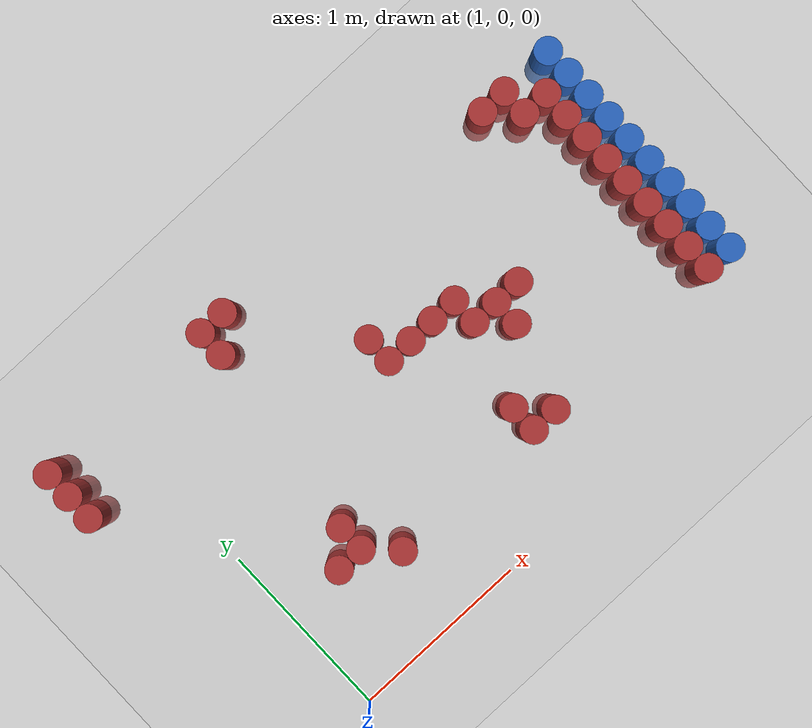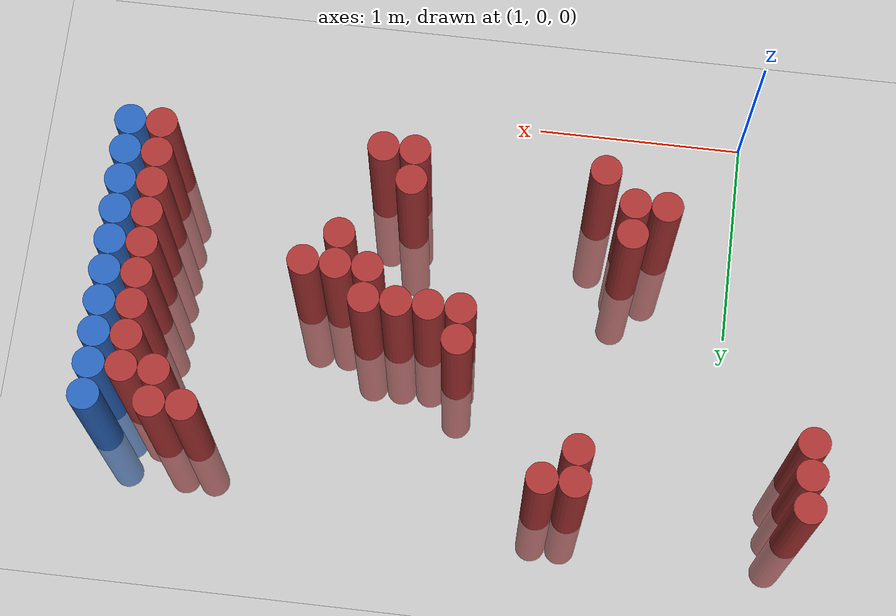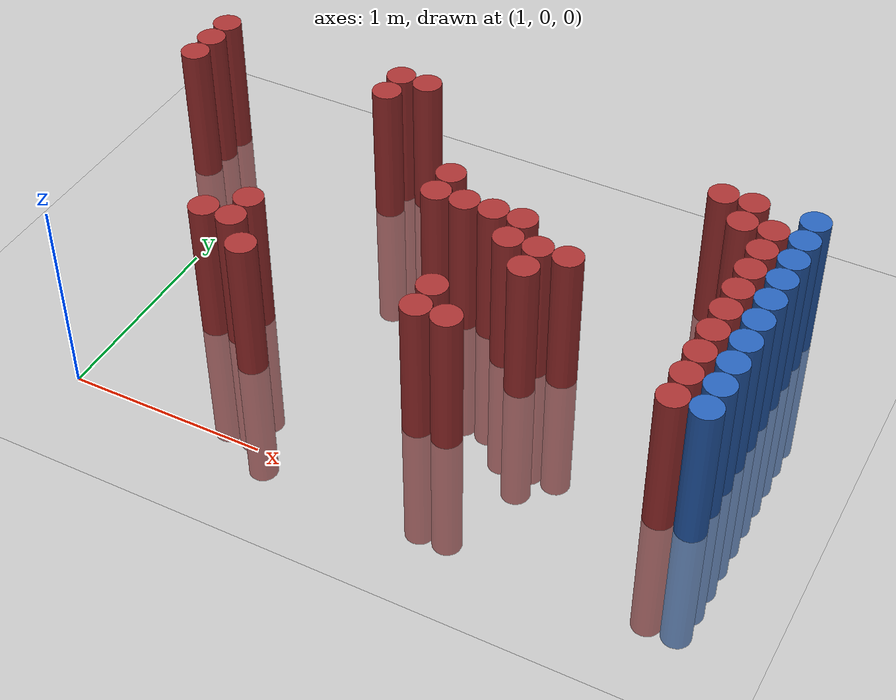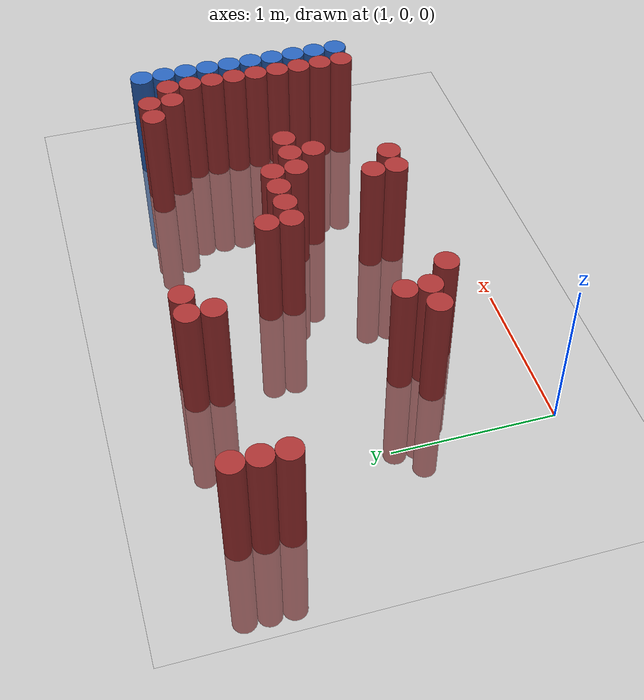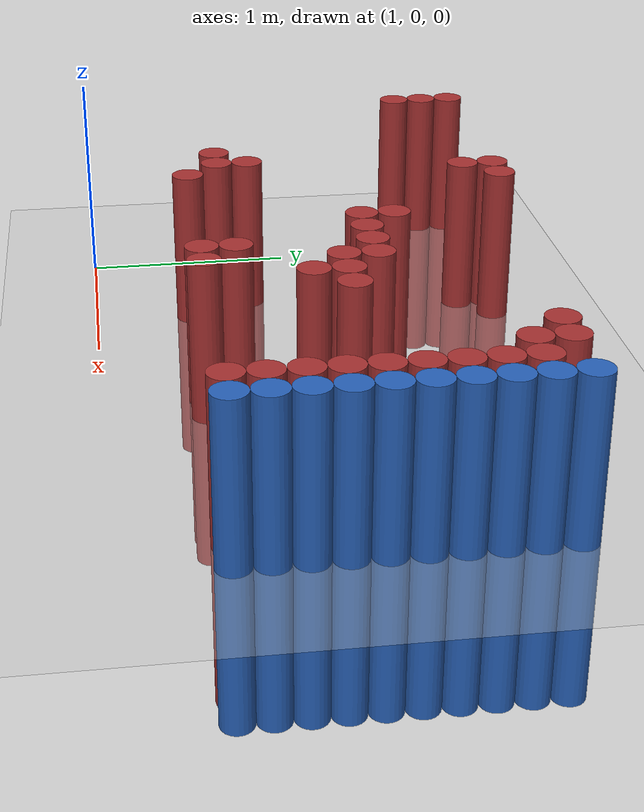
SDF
<sdf version="1.6">
 <world name="default">
  <model name="ground_plane">
   <static>1</static>
   <link name="link">
    <collision name="collision">
     <geometry><plane><normal>0 0 1</normal><size>100 100</size></plane></geometry>
     <surface><friction><ode><mu>100</mu><mu2>50</mu2></ode></friction></surface>
    </collision>
    <visual name="visual">
     <cast_shadows>0</cast_shadows>
     <geometry><plane><normal>0 0 1</normal><size>100 100</size></plane></geometry>
     <material>
      <script><uri>file://media/materials/scripts/gazebo.material</uri><name>Gazebo/Grey</name></script>
     </material>
    </visual>
   </link>
  </model>
  <model name="unit_cylinder_122">
   <static>1</static>
   <pose>3.925000 0.625000 0.000000 0.000000 0.000000 0.000000</pose>
   <link name="link">
    <inertial>
     <mass>1</mass>
     <inertia><ixx>0.145833</ixx><ixy>0</ixy><ixz>0</ixz><iyy>0.145833</iyy><iyz>0</iyz><izz>0.125</izz></inertia>
    </inertial>
    <collision name="collision">
     <geometry><cylinder><radius>0.075000</radius><length>1.5</length></cylinder></geometry>
    </collision>
    <visual name="visual">
     <geometry><cylinder><radius>0.075000</radius><length>1.5</length></cylinder></geometry>
     <material>
      <ambient>0.152000 0.379000 0.720000 1</ambient>
      <diffuse>0.152000 0.379000 0.720000 1</diffuse>
     </material>
     <material>
      <script><name>Gazebo/Grey</name><uri>file://media/materials/scripts/gazebo.material</uri></script>
     </material>
    </visual>
   </link>
  </model>
  <model name="unit_cylinder_124">
   <static>1</static>
   <pose>3.925000 0.775000 0.000000 0.000000 0.000000 0.000000</pose>
   <link name="link">
    <inertial>
     <mass>1</mass>
     <inertia><ixx>0.145833</ixx><ixy>0</ixy><ixz>0</ixz><iyy>0.145833</iyy><iyz>0</iyz><izz>0.125</izz></inertia>
    </inertial>
    <collision name="collision">
     <geometry><cylinder><radius>0.075000</radius><length>1.5</length></cylinder></geometry>
    </collision>
    <visual name="visual">
     <geometry><cylinder><radius>0.075000</radius><length>1.5</length></cylinder></geometry>
     <material>
      <ambient>0.152000 0.379000 0.720000 1</ambient>
      <diffuse>0.152000 0.379000 0.720000 1</diffuse>
     </material>
     <material>
      <script><name>Gazebo/Grey</name><uri>file://media/materials/scripts/gazebo.material</uri></script>
     </material>
    </visual>
   </link>
  </model>
  <model name="unit_cylinder_126">
   <static>1</static>
   <pose>3.925000 0.925000 0.000000 0.000000 0.000000 0.000000</pose>
   <link name="link">
    <inertial>
     <mass>1</mass>
     <inertia><ixx>0.145833</ixx><ixy>0</ixy><ixz>0</ixz><iyy>0.145833</iyy><iyz>0</iyz><izz>0.125</izz></inertia>
    </inertial>
    <collision name="collision">
     <geometry><cylinder><radius>0.075000</radius><length>1.5</length></cylinder></geometry>
    </collision>
    <visual name="visual">
     <geometry><cylinder><radius>0.075000</radius><length>1.5</length></cylinder></geometry>
     <material>
      <ambient>0.152000 0.379000 0.720000 1</ambient>
      <diffuse>0.152000 0.379000 0.720000 1</diffuse>
     </material>
     <material>
      <script><name>Gazebo/Grey</name><uri>file://media/materials/scripts/gazebo.material</uri></script>
     </material>
    </visual>
   </link>
  </model>
  <model name="unit_cylinder_128">
   <static>1</static>
   <pose>3.925000 1.075000 0.000000 0.000000 0.000000 0.000000</pose>
   <link name="link">
    <inertial>
     <mass>1</mass>
     <inertia><ixx>0.145833</ixx><ixy>0</ixy><ixz>0</ixz><iyy>0.145833</iyy><iyz>0</iyz><izz>0.125</izz></inertia>
    </inertial>
    <collision name="collision">
     <geometry><cylinder><radius>0.075000</radius><length>1.5</length></cylinder></geometry>
    </collision>
    <visual name="visual">
     <geometry><cylinder><radius>0.075000</radius><length>1.5</length></cylinder></geometry>
     <material>
      <ambient>0.152000 0.379000 0.720000 1</ambient>
      <diffuse>0.152000 0.379000 0.720000 1</diffuse>
     </material>
     <material>
      <script><name>Gazebo/Grey</name><uri>file://media/materials/scripts/gazebo.material</uri></script>
     </material>
    </visual>
   </link>
  </model>
  <model name="unit_cylinder_130">
   <static>1</static>
   <pose>3.925000 1.225000 0.000000 0.000000 0.000000 0.000000</pose>
   <link name="link">
    <inertial>
     <mass>1</mass>
     <inertia><ixx>0.145833</ixx><ixy>0</ixy><ixz>0</ixz><iyy>0.145833</iyy><iyz>0</iyz><izz>0.125</izz></inertia>
    </inertial>
    <collision name="collision">
     <geometry><cylinder><radius>0.075000</radius><length>1.5</length></cylinder></geometry>
    </collision>
    <visual name="visual">
     <geometry><cylinder><radius>0.075000</radius><length>1.5</length></cylinder></geometry>
     <material>
      <ambient>0.152000 0.379000 0.720000 1</ambient>
      <diffuse>0.152000 0.379000 0.720000 1</diffuse>
     </material>
     <material>
      <script><name>Gazebo/Grey</name><uri>file://media/materials/scripts/gazebo.material</uri></script>
     </material>
    </visual>
   </link>
  </model>
  <model name="unit_cylinder_132">
   <static>1</static>
   <pose>3.925000 1.375000 0.000000 0.000000 0.000000 0.000000</pose>
   <link name="link">
    <inertial>
     <mass>1</mass>
     <inertia><ixx>0.145833</ixx><ixy>0</ixy><ixz>0</ixz><iyy>0.145833</iyy><iyz>0</iyz><izz>0.125</izz></inertia>
    </inertial>
    <collision name="collision">
     <geometry><cylinder><radius>0.075000</radius><length>1.5</length></cylinder></geometry>
    </collision>
    <visual name="visual">
     <geometry><cylinder><radius>0.075000</radius><length>1.5</length></cylinder></geometry>
     <material>
      <ambient>0.152000 0.379000 0.720000 1</ambient>
      <diffuse>0.152000 0.379000 0.720000 1</diffuse>
     </material>
     <material>
      <script><name>Gazebo/Grey</name><uri>file://media/materials/scripts/gazebo.material</uri></script>
     </material>
    </visual>
   </link>
  </model>
  <model name="unit_cylinder_134">
   <static>1</static>
   <pose>3.925000 1.525000 0.000000 0.000000 0.000000 0.000000</pose>
   <link name="link">
    <inertial>
     <mass>1</mass>
     <inertia><ixx>0.145833</ixx><ixy>0</ixy><ixz>0</ixz><iyy>0.145833</iyy><iyz>0</iyz><izz>0.125</izz></inertia>
    </inertial>
    <collision name="collision">
     <geometry><cylinder><radius>0.075000</radius><length>1.5</length></cylinder></geometry>
    </collision>
    <visual name="visual">
     <geometry><cylinder><radius>0.075000</radius><length>1.5</length></cylinder></geometry>
     <material>
      <ambient>0.152000 0.379000 0.720000 1</ambient>
      <diffuse>0.152000 0.379000 0.720000 1</diffuse>
     </material>
     <material>
      <script><name>Gazebo/Grey</name><uri>file://media/materials/scripts/gazebo.material</uri></script>
     </material>
    </visual>
   </link>
  </model>
  <model name="unit_cylinder_136">
   <static>1</static>
   <pose>3.925000 1.675000 0.000000 0.000000 0.000000 0.000000</pose>
   <link name="link">
    <inertial>
     <mass>1</mass>
     <inertia><ixx>0.145833</ixx><ixy>0</ixy><ixz>0</ixz><iyy>0.145833</iyy><iyz>0</iyz><izz>0.125</izz></inertia>
    </inertial>
    <collision name="collision">
     <geometry><cylinder><radius>0.075000</radius><length>1.5</length></cylinder></geometry>
    </collision>
    <visual name="visual">
     <geometry><cylinder><radius>0.075000</radius><length>1.5</length></cylinder></geometry>
     <material>
      <ambient>0.152000 0.379000 0.720000 1</ambient>
      <diffuse>0.152000 0.379000 0.720000 1</diffuse>
     </material>
     <material>
      <script><name>Gazebo/Grey</name><uri>file://media/materials/scripts/gazebo.material</uri></script>
     </material>
    </visual>
   </link>
  </model>
  <model name="unit_cylinder_138">
   <static>1</static>
   <pose>3.925000 1.825000 0.000000 0.000000 0.000000 0.000000</pose>
   <link name="link">
    <inertial>
     <mass>1</mass>
     <inertia><ixx>0.145833</ixx><ixy>0</ixy><ixz>0</ixz><iyy>0.145833</iyy><iyz>0</iyz><izz>0.125</izz></inertia>
    </inertial>
    <collision name="collision">
     <geometry><cylinder><radius>0.075000</radius><length>1.5</length></cylinder></geometry>
    </collision>
    <visual name="visual">
     <geometry><cylinder><radius>0.075000</radius><length>1.5</length></cylinder></geometry>
     <material>
      <ambient>0.152000 0.379000 0.720000 1</ambient>
      <diffuse>0.152000 0.379000 0.720000 1</diffuse>
     </material>
     <material>
      <script><name>Gazebo/Grey</name><uri>file://media/materials/scripts/gazebo.material</uri></script>
     </material>
    </visual>
   </link>
  </model>
  <model name="unit_cylinder_414">
   <static>1</static>
   <pose>0.625000 1.675000 0.000000 0.000000 0.000000 0.000000</pose>
   <link name="link">
    <inertial>
     <mass>1</mass>
     <inertia><ixx>0.145833</ixx><ixy>0</ixy><ixz>0</ixz><iyy>0.145833</iyy><iyz>0</iyz><izz>0.125</izz></inertia>
    </inertial>
    <collision name="collision">
     <geometry><cylinder><radius>0.075000</radius><length>1.5</length></cylinder></geometry>
    </collision>
    <visual name="visual">
     <geometry><cylinder><radius>0.075000</radius><length>1.5</length></cylinder></geometry>
     <material>
      <ambient>0.648000 0.192000 0.192000 1</ambient>
      <diffuse>0.648000 0.192000 0.192000 1</diffuse>
     </material>
     <material>
      <script><name>Gazebo/Grey</name><uri>file://media/materials/scripts/gazebo.material</uri></script>
     </material>
    </visual>
   </link>
  </model>
  <model name="unit_cylinder_415">
   <static>1</static>
   <pose>0.625000 1.825000 0.000000 0.000000 0.000000 0.000000</pose>
   <link name="link">
    <inertial>
     <mass>1</mass>
     <inertia><ixx>0.145833</ixx><ixy>0</ixy><ixz>0</ixz><iyy>0.145833</iyy><iyz>0</iyz><izz>0.125</izz></inertia>
    </inertial>
    <collision name="collision">
     <geometry><cylinder><radius>0.075000</radius><length>1.5</length></cylinder></geometry>
    </collision>
    <visual name="visual">
     <geometry><cylinder><radius>0.075000</radius><length>1.5</length></cylinder></geometry>
     <material>
      <ambient>0.648000 0.192000 0.192000 1</ambient>
      <diffuse>0.648000 0.192000 0.192000 1</diffuse>
     </material>
     <material>
      <script><name>Gazebo/Grey</name><uri>file://media/materials/scripts/gazebo.material</uri></script>
     </material>
    </visual>
   </link>
  </model>
  <model name="unit_cylinder_416">
   <static>1</static>
   <pose>0.625000 1.975000 0.000000 0.000000 0.000000 0.000000</pose>
   <link name="link">
    <inertial>
     <mass>1</mass>
     <inertia><ixx>0.145833</ixx><ixy>0</ixy><ixz>0</ixz><iyy>0.145833</iyy><iyz>0</iyz><izz>0.125</izz></inertia>
    </inertial>
    <collision name="collision">
     <geometry><cylinder><radius>0.075000</radius><length>1.5</length></cylinder></geometry>
    </collision>
    <visual name="visual">
     <geometry><cylinder><radius>0.075000</radius><length>1.5</length></cylinder></geometry>
     <material>
      <ambient>0.648000 0.192000 0.192000 1</ambient>
      <diffuse>0.648000 0.192000 0.192000 1</diffuse>
     </material>
     <material>
      <script><name>Gazebo/Grey</name><uri>file://media/materials/scripts/gazebo.material</uri></script>
     </material>
    </visual>
   </link>
  </model>
  <model name="unit_cylinder_429">
   <static>1</static>
   <pose>1.375000 0.625000 0.000000 0.000000 0.000000 0.000000</pose>
   <link name="link">
    <inertial>
     <mass>1</mass>
     <inertia><ixx>0.145833</ixx><ixy>0</ixy><ixz>0</ixz><iyy>0.145833</iyy><iyz>0</iyz><izz>0.125</izz></inertia>
    </inertial>
    <collision name="collision">
     <geometry><cylinder><radius>0.075000</radius><length>1.5</length></cylinder></geometry>
    </collision>
    <visual name="visual">
     <geometry><cylinder><radius>0.075000</radius><length>1.5</length></cylinder></geometry>
     <material>
      <ambient>0.648000 0.192000 0.192000 1</ambient>
      <diffuse>0.648000 0.192000 0.192000 1</diffuse>
     </material>
     <material>
      <script><name>Gazebo/Grey</name><uri>file://media/materials/scripts/gazebo.material</uri></script>
     </material>
    </visual>
   </link>
  </model>
  <model name="unit_cylinder_432">
   <static>1</static>
   <pose>1.525000 0.625000 0.000000 0.000000 0.000000 0.000000</pose>
   <link name="link">
    <inertial>
     <mass>1</mass>
     <inertia><ixx>0.145833</ixx><ixy>0</ixy><ixz>0</ixz><iyy>0.145833</iyy><iyz>0</iyz><izz>0.125</izz></inertia>
    </inertial>
    <collision name="collision">
     <geometry><cylinder><radius>0.075000</radius><length>1.5</length></cylinder></geometry>
    </collision>
    <visual name="visual">
     <geometry><cylinder><radius>0.075000</radius><length>1.5</length></cylinder></geometry>
     <material>
      <ambient>0.648000 0.192000 0.192000 1</ambient>
      <diffuse>0.648000 0.192000 0.192000 1</diffuse>
     </material>
     <material>
      <script><name>Gazebo/Grey</name><uri>file://media/materials/scripts/gazebo.material</uri></script>
     </material>
    </visual>
   </link>
  </model>
  <model name="unit_cylinder_433">
   <static>1</static>
   <pose>1.525000 0.775000 0.000000 0.000000 0.000000 0.000000</pose>
   <link name="link">
    <inertial>
     <mass>1</mass>
     <inertia><ixx>0.145833</ixx><ixy>0</ixy><ixz>0</ixz><iyy>0.145833</iyy><iyz>0</iyz><izz>0.125</izz></inertia>
    </inertial>
    <collision name="collision">
     <geometry><cylinder><radius>0.075000</radius><length>1.5</length></cylinder></geometry>
    </collision>
    <visual name="visual">
     <geometry><cylinder><radius>0.075000</radius><length>1.5</length></cylinder></geometry>
     <material>
      <ambient>0.648000 0.192000 0.192000 1</ambient>
      <diffuse>0.648000 0.192000 0.192000 1</diffuse>
     </material>
     <material>
      <script><name>Gazebo/Grey</name><uri>file://media/materials/scripts/gazebo.material</uri></script>
     </material>
    </visual>
   </link>
  </model>
  <model name="unit_cylinder_437">
   <static>1</static>
   <pose>1.675000 0.475000 0.000000 0.000000 0.000000 0.000000</pose>
   <link name="link">
    <inertial>
     <mass>1</mass>
     <inertia><ixx>0.145833</ixx><ixy>0</ixy><ixz>0</ixz><iyy>0.145833</iyy><iyz>0</iyz><izz>0.125</izz></inertia>
    </inertial>
    <collision name="collision">
     <geometry><cylinder><radius>0.075000</radius><length>1.5</length></cylinder></geometry>
    </collision>
    <visual name="visual">
     <geometry><cylinder><radius>0.075000</radius><length>1.5</length></cylinder></geometry>
     <material>
      <ambient>0.648000 0.192000 0.192000 1</ambient>
      <diffuse>0.648000 0.192000 0.192000 1</diffuse>
     </material>
     <material>
      <script><name>Gazebo/Grey</name><uri>file://media/materials/scripts/gazebo.material</uri></script>
     </material>
    </visual>
   </link>
  </model>
  <model name="unit_cylinder_438">
   <static>1</static>
   <pose>1.675000 1.825000 0.000000 0.000000 0.000000 0.000000</pose>
   <link name="link">
    <inertial>
     <mass>1</mass>
     <inertia><ixx>0.145833</ixx><ixy>0</ixy><ixz>0</ixz><iyy>0.145833</iyy><iyz>0</iyz><izz>0.125</izz></inertia>
    </inertial>
    <collision name="collision">
     <geometry><cylinder><radius>0.075000</radius><length>1.5</length></cylinder></geometry>
    </collision>
    <visual name="visual">
     <geometry><cylinder><radius>0.075000</radius><length>1.5</length></cylinder></geometry>
     <material>
      <ambient>0.648000 0.192000 0.192000 1</ambient>
      <diffuse>0.648000 0.192000 0.192000 1</diffuse>
     </material>
     <material>
      <script><name>Gazebo/Grey</name><uri>file://media/materials/scripts/gazebo.material</uri></script>
     </material>
    </visual>
   </link>
  </model>
  <model name="unit_cylinder_439">
   <static>1</static>
   <pose>1.675000 1.975000 0.000000 0.000000 0.000000 0.000000</pose>
   <link name="link">
    <inertial>
     <mass>1</mass>
     <inertia><ixx>0.145833</ixx><ixy>0</ixy><ixz>0</ixz><iyy>0.145833</iyy><iyz>0</iyz><izz>0.125</izz></inertia>
    </inertial>
    <collision name="collision">
     <geometry><cylinder><radius>0.075000</radius><length>1.5</length></cylinder></geometry>
    </collision>
    <visual name="visual">
     <geometry><cylinder><radius>0.075000</radius><length>1.5</length></cylinder></geometry>
     <material>
      <ambient>0.648000 0.192000 0.192000 1</ambient>
      <diffuse>0.648000 0.192000 0.192000 1</diffuse>
     </material>
     <material>
      <script><name>Gazebo/Grey</name><uri>file://media/materials/scripts/gazebo.material</uri></script>
     </material>
    </visual>
   </link>
  </model>
  <model name="unit_cylinder_441">
   <static>1</static>
   <pose>1.825000 1.975000 0.000000 0.000000 0.000000 0.000000</pose>
   <link name="link">
    <inertial>
     <mass>1</mass>
     <inertia><ixx>0.145833</ixx><ixy>0</ixy><ixz>0</ixz><iyy>0.145833</iyy><iyz>0</iyz><izz>0.125</izz></inertia>
    </inertial>
    <collision name="collision">
     <geometry><cylinder><radius>0.075000</radius><length>1.5</length></cylinder></geometry>
    </collision>
    <visual name="visual">
     <geometry><cylinder><radius>0.075000</radius><length>1.5</length></cylinder></geometry>
     <material>
      <ambient>0.648000 0.192000 0.192000 1</ambient>
      <diffuse>0.648000 0.192000 0.192000 1</diffuse>
     </material>
     <material>
      <script><name>Gazebo/Grey</name><uri>file://media/materials/scripts/gazebo.material</uri></script>
     </material>
    </visual>
   </link>
  </model>
  <model name="unit_cylinder_447">
   <static>1</static>
   <pose>2.275000 1.225000 0.000000 0.000000 0.000000 0.000000</pose>
   <link name="link">
    <inertial>
     <mass>1</mass>
     <inertia><ixx>0.145833</ixx><ixy>0</ixy><ixz>0</ixz><iyy>0.145833</iyy><iyz>0</iyz><izz>0.125</izz></inertia>
    </inertial>
    <collision name="collision">
     <geometry><cylinder><radius>0.075000</radius><length>1.5</length></cylinder></geometry>
    </collision>
    <visual name="visual">
     <geometry><cylinder><radius>0.075000</radius><length>1.5</length></cylinder></geometry>
     <material>
      <ambient>0.648000 0.192000 0.192000 1</ambient>
      <diffuse>0.648000 0.192000 0.192000 1</diffuse>
     </material>
     <material>
      <script><name>Gazebo/Grey</name><uri>file://media/materials/scripts/gazebo.material</uri></script>
     </material>
    </visual>
   </link>
  </model>
  <model name="unit_cylinder_448">
   <static>1</static>
   <pose>2.275000 1.375000 0.000000 0.000000 0.000000 0.000000</pose>
   <link name="link">
    <inertial>
     <mass>1</mass>
     <inertia><ixx>0.145833</ixx><ixy>0</ixy><ixz>0</ixz><iyy>0.145833</iyy><iyz>0</iyz><izz>0.125</izz></inertia>
    </inertial>
    <collision name="collision">
     <geometry><cylinder><radius>0.075000</radius><length>1.5</length></cylinder></geometry>
    </collision>
    <visual name="visual">
     <geometry><cylinder><radius>0.075000</radius><length>1.5</length></cylinder></geometry>
     <material>
      <ambient>0.648000 0.192000 0.192000 1</ambient>
      <diffuse>0.648000 0.192000 0.192000 1</diffuse>
     </material>
     <material>
      <script><name>Gazebo/Grey</name><uri>file://media/materials/scripts/gazebo.material</uri></script>
     </material>
    </visual>
   </link>
  </model>
  <model name="unit_cylinder_451">
   <static>1</static>
   <pose>2.425000 1.225000 0.000000 0.000000 0.000000 0.000000</pose>
   <link name="link">
    <inertial>
     <mass>1</mass>
     <inertia><ixx>0.145833</ixx><ixy>0</ixy><ixz>0</ixz><iyy>0.145833</iyy><iyz>0</iyz><izz>0.125</izz></inertia>
    </inertial>
    <collision name="collision">
     <geometry><cylinder><radius>0.075000</radius><length>1.5</length></cylinder></geometry>
    </collision>
    <visual name="visual">
     <geometry><cylinder><radius>0.075000</radius><length>1.5</length></cylinder></geometry>
     <material>
      <ambient>0.648000 0.192000 0.192000 1</ambient>
      <diffuse>0.648000 0.192000 0.192000 1</diffuse>
     </material>
     <material>
      <script><name>Gazebo/Grey</name><uri>file://media/materials/scripts/gazebo.material</uri></script>
     </material>
    </visual>
   </link>
  </model>
  <model name="unit_cylinder_453">
   <static>1</static>
   <pose>2.575000 0.475000 0.000000 0.000000 0.000000 0.000000</pose>
   <link name="link">
    <inertial>
     <mass>1</mass>
     <inertia><ixx>0.145833</ixx><ixy>0</ixy><ixz>0</ixz><iyy>0.145833</iyy><iyz>0</iyz><izz>0.125</izz></inertia>
    </inertial>
    <collision name="collision">
     <geometry><cylinder><radius>0.075000</radius><length>1.5</length></cylinder></geometry>
    </collision>
    <visual name="visual">
     <geometry><cylinder><radius>0.075000</radius><length>1.5</length></cylinder></geometry>
     <material>
      <ambient>0.648000 0.192000 0.192000 1</ambient>
      <diffuse>0.648000 0.192000 0.192000 1</diffuse>
     </material>
     <material>
      <script><name>Gazebo/Grey</name><uri>file://media/materials/scripts/gazebo.material</uri></script>
     </material>
    </visual>
   </link>
  </model>
  <model name="unit_cylinder_454">
   <static>1</static>
   <pose>2.575000 0.625000 0.000000 0.000000 0.000000 0.000000</pose>
   <link name="link">
    <inertial>
     <mass>1</mass>
     <inertia><ixx>0.145833</ixx><ixy>0</ixy><ixz>0</ixz><iyy>0.145833</iyy><iyz>0</iyz><izz>0.125</izz></inertia>
    </inertial>
    <collision name="collision">
     <geometry><cylinder><radius>0.075000</radius><length>1.5</length></cylinder></geometry>
    </collision>
    <visual name="visual">
     <geometry><cylinder><radius>0.075000</radius><length>1.5</length></cylinder></geometry>
     <material>
      <ambient>0.648000 0.192000 0.192000 1</ambient>
      <diffuse>0.648000 0.192000 0.192000 1</diffuse>
     </material>
     <material>
      <script><name>Gazebo/Grey</name><uri>file://media/materials/scripts/gazebo.material</uri></script>
     </material>
    </visual>
   </link>
  </model>
  <model name="unit_cylinder_455">
   <static>1</static>
   <pose>2.575000 1.225000 0.000000 0.000000 0.000000 0.000000</pose>
   <link name="link">
    <inertial>
     <mass>1</mass>
     <inertia><ixx>0.145833</ixx><ixy>0</ixy><ixz>0</ixz><iyy>0.145833</iyy><iyz>0</iyz><izz>0.125</izz></inertia>
    </inertial>
    <collision name="collision">
     <geometry><cylinder><radius>0.075000</radius><length>1.5</length></cylinder></geometry>
    </collision>
    <visual name="visual">
     <geometry><cylinder><radius>0.075000</radius><length>1.5</length></cylinder></geometry>
     <material>
      <ambient>0.648000 0.192000 0.192000 1</ambient>
      <diffuse>0.648000 0.192000 0.192000 1</diffuse>
     </material>
     <material>
      <script><name>Gazebo/Grey</name><uri>file://media/materials/scripts/gazebo.material</uri></script>
     </material>
    </visual>
   </link>
  </model>
  <model name="unit_cylinder_458">
   <static>1</static>
   <pose>2.725000 0.475000 0.000000 0.000000 0.000000 0.000000</pose>
   <link name="link">
    <inertial>
     <mass>1</mass>
     <inertia><ixx>0.145833</ixx><ixy>0</ixy><ixz>0</ixz><iyy>0.145833</iyy><iyz>0</iyz><izz>0.125</izz></inertia>
    </inertial>
    <collision name="collision">
     <geometry><cylinder><radius>0.075000</radius><length>1.5</length></cylinder></geometry>
    </collision>
    <visual name="visual">
     <geometry><cylinder><radius>0.075000</radius><length>1.5</length></cylinder></geometry>
     <material>
      <ambient>0.648000 0.192000 0.192000 1</ambient>
      <diffuse>0.648000 0.192000 0.192000 1</diffuse>
     </material>
     <material>
      <script><name>Gazebo/Grey</name><uri>file://media/materials/scripts/gazebo.material</uri></script>
     </material>
    </visual>
   </link>
  </model>
  <model name="unit_cylinder_459">
   <static>1</static>
   <pose>2.725000 1.075000 0.000000 0.000000 0.000000 0.000000</pose>
   <link name="link">
    <inertial>
     <mass>1</mass>
     <inertia><ixx>0.145833</ixx><ixy>0</ixy><ixz>0</ixz><iyy>0.145833</iyy><iyz>0</iyz><izz>0.125</izz></inertia>
    </inertial>
    <collision name="collision">
     <geometry><cylinder><radius>0.075000</radius><length>1.5</length></cylinder></geometry>
    </collision>
    <visual name="visual">
     <geometry><cylinder><radius>0.075000</radius><length>1.5</length></cylinder></geometry>
     <material>
      <ambient>0.648000 0.192000 0.192000 1</ambient>
      <diffuse>0.648000 0.192000 0.192000 1</diffuse>
     </material>
     <material>
      <script><name>Gazebo/Grey</name><uri>file://media/materials/scripts/gazebo.material</uri></script>
     </material>
    </visual>
   </link>
  </model>
  <model name="unit_cylinder_460">
   <static>1</static>
   <pose>2.725000 1.225000 0.000000 0.000000 0.000000 0.000000</pose>
   <link name="link">
    <inertial>
     <mass>1</mass>
     <inertia><ixx>0.145833</ixx><ixy>0</ixy><ixz>0</ixz><iyy>0.145833</iyy><iyz>0</iyz><izz>0.125</izz></inertia>
    </inertial>
    <collision name="collision">
     <geometry><cylinder><radius>0.075000</radius><length>1.5</length></cylinder></geometry>
    </collision>
    <visual name="visual">
     <geometry><cylinder><radius>0.075000</radius><length>1.5</length></cylinder></geometry>
     <material>
      <ambient>0.648000 0.192000 0.192000 1</ambient>
      <diffuse>0.648000 0.192000 0.192000 1</diffuse>
     </material>
     <material>
      <script><name>Gazebo/Grey</name><uri>file://media/materials/scripts/gazebo.material</uri></script>
     </material>
    </visual>
   </link>
  </model>
  <model name="unit_cylinder_463">
   <static>1</static>
   <pose>2.875000 0.925000 0.000000 0.000000 0.000000 0.000000</pose>
   <link name="link">
    <inertial>
     <mass>1</mass>
     <inertia><ixx>0.145833</ixx><ixy>0</ixy><ixz>0</ixz><iyy>0.145833</iyy><iyz>0</iyz><izz>0.125</izz></inertia>
    </inertial>
    <collision name="collision">
     <geometry><cylinder><radius>0.075000</radius><length>1.5</length></cylinder></geometry>
    </collision>
    <visual name="visual">
     <geometry><cylinder><radius>0.075000</radius><length>1.5</length></cylinder></geometry>
     <material>
      <ambient>0.648000 0.192000 0.192000 1</ambient>
      <diffuse>0.648000 0.192000 0.192000 1</diffuse>
     </material>
     <material>
      <script><name>Gazebo/Grey</name><uri>file://media/materials/scripts/gazebo.material</uri></script>
     </material>
    </visual>
   </link>
  </model>
  <model name="unit_cylinder_464">
   <static>1</static>
   <pose>2.875000 1.075000 0.000000 0.000000 0.000000 0.000000</pose>
   <link name="link">
    <inertial>
     <mass>1</mass>
     <inertia><ixx>0.145833</ixx><ixy>0</ixy><ixz>0</ixz><iyy>0.145833</iyy><iyz>0</iyz><izz>0.125</izz></inertia>
    </inertial>
    <collision name="collision">
     <geometry><cylinder><radius>0.075000</radius><length>1.5</length></cylinder></geometry>
    </collision>
    <visual name="visual">
     <geometry><cylinder><radius>0.075000</radius><length>1.5</length></cylinder></geometry>
     <material>
      <ambient>0.648000 0.192000 0.192000 1</ambient>
      <diffuse>0.648000 0.192000 0.192000 1</diffuse>
     </material>
     <material>
      <script><name>Gazebo/Grey</name><uri>file://media/materials/scripts/gazebo.material</uri></script>
     </material>
    </visual>
   </link>
  </model>
  <model name="unit_cylinder_467">
   <static>1</static>
   <pose>3.025000 1.075000 0.000000 0.000000 0.000000 0.000000</pose>
   <link name="link">
    <inertial>
     <mass>1</mass>
     <inertia><ixx>0.145833</ixx><ixy>0</ixy><ixz>0</ixz><iyy>0.145833</iyy><iyz>0</iyz><izz>0.125</izz></inertia>
    </inertial>
    <collision name="collision">
     <geometry><cylinder><radius>0.075000</radius><length>1.5</length></cylinder></geometry>
    </collision>
    <visual name="visual">
     <geometry><cylinder><radius>0.075000</radius><length>1.5</length></cylinder></geometry>
     <material>
      <ambient>0.648000 0.192000 0.192000 1</ambient>
      <diffuse>0.648000 0.192000 0.192000 1</diffuse>
     </material>
     <material>
      <script><name>Gazebo/Grey</name><uri>file://media/materials/scripts/gazebo.material</uri></script>
     </material>
    </visual>
   </link>
  </model>
  <model name="unit_cylinder_481">
   <static>1</static>
   <pose>3.475000 1.825000 0.000000 0.000000 0.000000 0.000000</pose>
   <link name="link">
    <inertial>
     <mass>1</mass>
     <inertia><ixx>0.145833</ixx><ixy>0</ixy><ixz>0</ixz><iyy>0.145833</iyy><iyz>0</iyz><izz>0.125</izz></inertia>
    </inertial>
    <collision name="collision">
     <geometry><cylinder><radius>0.075000</radius><length>1.5</length></cylinder></geometry>
    </collision>
    <visual name="visual">
     <geometry><cylinder><radius>0.075000</radius><length>1.5</length></cylinder></geometry>
     <material>
      <ambient>0.648000 0.192000 0.192000 1</ambient>
      <diffuse>0.648000 0.192000 0.192000 1</diffuse>
     </material>
     <material>
      <script><name>Gazebo/Grey</name><uri>file://media/materials/scripts/gazebo.material</uri></script>
     </material>
    </visual>
   </link>
  </model>
  <model name="unit_cylinder_492">
   <static>1</static>
   <pose>3.625000 1.675000 0.000000 0.000000 0.000000 0.000000</pose>
   <link name="link">
    <inertial>
     <mass>1</mass>
     <inertia><ixx>0.145833</ixx><ixy>0</ixy><ixz>0</ixz><iyy>0.145833</iyy><iyz>0</iyz><izz>0.125</izz></inertia>
    </inertial>
    <collision name="collision">
     <geometry><cylinder><radius>0.075000</radius><length>1.5</length></cylinder></geometry>
    </collision>
    <visual name="visual">
     <geometry><cylinder><radius>0.075000</radius><length>1.5</length></cylinder></geometry>
     <material>
      <ambient>0.648000 0.192000 0.192000 1</ambient>
      <diffuse>0.648000 0.192000 0.192000 1</diffuse>
     </material>
     <material>
      <script><name>Gazebo/Grey</name><uri>file://media/materials/scripts/gazebo.material</uri></script>
     </material>
    </visual>
   </link>
  </model>
  <model name="unit_cylinder_493">
   <static>1</static>
   <pose>3.625000 1.825000 0.000000 0.000000 0.000000 0.000000</pose>
   <link name="link">
    <inertial>
     <mass>1</mass>
     <inertia><ixx>0.145833</ixx><ixy>0</ixy><ixz>0</ixz><iyy>0.145833</iyy><iyz>0</iyz><izz>0.125</izz></inertia>
    </inertial>
    <collision name="collision">
     <geometry><cylinder><radius>0.075000</radius><length>1.5</length></cylinder></geometry>
    </collision>
    <visual name="visual">
     <geometry><cylinder><radius>0.075000</radius><length>1.5</length></cylinder></geometry>
     <material>
      <ambient>0.648000 0.192000 0.192000 1</ambient>
      <diffuse>0.648000 0.192000 0.192000 1</diffuse>
     </material>
     <material>
      <script><name>Gazebo/Grey</name><uri>file://media/materials/scripts/gazebo.material</uri></script>
     </material>
    </visual>
   </link>
  </model>
  <model name="unit_cylinder_512">
   <static>1</static>
   <pose>3.775000 0.475000 0.000000 0.000000 0.000000 0.000000</pose>
   <link name="link">
    <inertial>
     <mass>1</mass>
     <inertia><ixx>0.145833</ixx><ixy>0</ixy><ixz>0</ixz><iyy>0.145833</iyy><iyz>0</iyz><izz>0.125</izz></inertia>
    </inertial>
    <collision name="collision">
     <geometry><cylinder><radius>0.075000</radius><length>1.5</length></cylinder></geometry>
    </collision>
    <visual name="visual">
     <geometry><cylinder><radius>0.075000</radius><length>1.5</length></cylinder></geometry>
     <material>
      <ambient>0.648000 0.192000 0.192000 1</ambient>
      <diffuse>0.648000 0.192000 0.192000 1</diffuse>
     </material>
     <material>
      <script><name>Gazebo/Grey</name><uri>file://media/materials/scripts/gazebo.material</uri></script>
     </material>
    </visual>
   </link>
  </model>
  <model name="unit_cylinder_513">
   <static>1</static>
   <pose>3.775000 0.625000 0.000000 0.000000 0.000000 0.000000</pose>
   <link name="link">
    <inertial>
     <mass>1</mass>
     <inertia><ixx>0.145833</ixx><ixy>0</ixy><ixz>0</ixz><iyy>0.145833</iyy><iyz>0</iyz><izz>0.125</izz></inertia>
    </inertial>
    <collision name="collision">
     <geometry><cylinder><radius>0.075000</radius><length>1.5</length></cylinder></geometry>
    </collision>
    <visual name="visual">
     <geometry><cylinder><radius>0.075000</radius><length>1.5</length></cylinder></geometry>
     <material>
      <ambient>0.648000 0.192000 0.192000 1</ambient>
      <diffuse>0.648000 0.192000 0.192000 1</diffuse>
     </material>
     <material>
      <script><name>Gazebo/Grey</name><uri>file://media/materials/scripts/gazebo.material</uri></script>
     </material>
    </visual>
   </link>
  </model>
  <model name="unit_cylinder_514">
   <static>1</static>
   <pose>3.775000 0.775000 0.000000 0.000000 0.000000 0.000000</pose>
   <link name="link">
    <inertial>
     <mass>1</mass>
     <inertia><ixx>0.145833</ixx><ixy>0</ixy><ixz>0</ixz><iyy>0.145833</iyy><iyz>0</iyz><izz>0.125</izz></inertia>
    </inertial>
    <collision name="collision">
     <geometry><cylinder><radius>0.075000</radius><length>1.5</length></cylinder></geometry>
    </collision>
    <visual name="visual">
     <geometry><cylinder><radius>0.075000</radius><length>1.5</length></cylinder></geometry>
     <material>
      <ambient>0.648000 0.192000 0.192000 1</ambient>
      <diffuse>0.648000 0.192000 0.192000 1</diffuse>
     </material>
     <material>
      <script><name>Gazebo/Grey</name><uri>file://media/materials/scripts/gazebo.material</uri></script>
     </material>
    </visual>
   </link>
  </model>
  <model name="unit_cylinder_515">
   <static>1</static>
   <pose>3.775000 0.925000 0.000000 0.000000 0.000000 0.000000</pose>
   <link name="link">
    <inertial>
     <mass>1</mass>
     <inertia><ixx>0.145833</ixx><ixy>0</ixy><ixz>0</ixz><iyy>0.145833</iyy><iyz>0</iyz><izz>0.125</izz></inertia>
    </inertial>
    <collision name="collision">
     <geometry><cylinder><radius>0.075000</radius><length>1.5</length></cylinder></geometry>
    </collision>
    <visual name="visual">
     <geometry><cylinder><radius>0.075000</radius><length>1.5</length></cylinder></geometry>
     <material>
      <ambient>0.648000 0.192000 0.192000 1</ambient>
      <diffuse>0.648000 0.192000 0.192000 1</diffuse>
     </material>
     <material>
      <script><name>Gazebo/Grey</name><uri>file://media/materials/scripts/gazebo.material</uri></script>
     </material>
    </visual>
   </link>
  </model>
  <model name="unit_cylinder_516">
   <static>1</static>
   <pose>3.775000 1.075000 0.000000 0.000000 0.000000 0.000000</pose>
   <link name="link">
    <inertial>
     <mass>1</mass>
     <inertia><ixx>0.145833</ixx><ixy>0</ixy><ixz>0</ixz><iyy>0.145833</iyy><iyz>0</iyz><izz>0.125</izz></inertia>
    </inertial>
    <collision name="collision">
     <geometry><cylinder><radius>0.075000</radius><length>1.5</length></cylinder></geometry>
    </collision>
    <visual name="visual">
     <geometry><cylinder><radius>0.075000</radius><length>1.5</length></cylinder></geometry>
     <material>
      <ambient>0.648000 0.192000 0.192000 1</ambient>
      <diffuse>0.648000 0.192000 0.192000 1</diffuse>
     </material>
     <material>
      <script><name>Gazebo/Grey</name><uri>file://media/materials/scripts/gazebo.material</uri></script>
     </material>
    </visual>
   </link>
  </model>
  <model name="unit_cylinder_517">
   <static>1</static>
   <pose>3.775000 1.225000 0.000000 0.000000 0.000000 0.000000</pose>
   <link name="link">
    <inertial>
     <mass>1</mass>
     <inertia><ixx>0.145833</ixx><ixy>0</ixy><ixz>0</ixz><iyy>0.145833</iyy><iyz>0</iyz><izz>0.125</izz></inertia>
    </inertial>
    <collision name="collision">
     <geometry><cylinder><radius>0.075000</radius><length>1.5</length></cylinder></geometry>
    </collision>
    <visual name="visual">
     <geometry><cylinder><radius>0.075000</radius><length>1.5</length></cylinder></geometry>
     <material>
      <ambient>0.648000 0.192000 0.192000 1</ambient>
      <diffuse>0.648000 0.192000 0.192000 1</diffuse>
     </material>
     <material>
      <script><name>Gazebo/Grey</name><uri>file://media/materials/scripts/gazebo.material</uri></script>
     </material>
    </visual>
   </link>
  </model>
  <model name="unit_cylinder_518">
   <static>1</static>
   <pose>3.775000 1.375000 0.000000 0.000000 0.000000 0.000000</pose>
   <link name="link">
    <inertial>
     <mass>1</mass>
     <inertia><ixx>0.145833</ixx><ixy>0</ixy><ixz>0</ixz><iyy>0.145833</iyy><iyz>0</iyz><izz>0.125</izz></inertia>
    </inertial>
    <collision name="collision">
     <geometry><cylinder><radius>0.075000</radius><length>1.5</length></cylinder></geometry>
    </collision>
    <visual name="visual">
     <geometry><cylinder><radius>0.075000</radius><length>1.5</length></cylinder></geometry>
     <material>
      <ambient>0.648000 0.192000 0.192000 1</ambient>
      <diffuse>0.648000 0.192000 0.192000 1</diffuse>
     </material>
     <material>
      <script><name>Gazebo/Grey</name><uri>file://media/materials/scripts/gazebo.material</uri></script>
     </material>
    </visual>
   </link>
  </model>
  <model name="unit_cylinder_519">
   <static>1</static>
   <pose>3.775000 1.525000 0.000000 0.000000 0.000000 0.000000</pose>
   <link name="link">
    <inertial>
     <mass>1</mass>
     <inertia><ixx>0.145833</ixx><ixy>0</ixy><ixz>0</ixz><iyy>0.145833</iyy><iyz>0</iyz><izz>0.125</izz></inertia>
    </inertial>
    <collision name="collision">
     <geometry><cylinder><radius>0.075000</radius><length>1.5</length></cylinder></geometry>
    </collision>
    <visual name="visual">
     <geometry><cylinder><radius>0.075000</radius><length>1.5</length></cylinder></geometry>
     <material>
      <ambient>0.648000 0.192000 0.192000 1</ambient>
      <diffuse>0.648000 0.192000 0.192000 1</diffuse>
     </material>
     <material>
      <script><name>Gazebo/Grey</name><uri>file://media/materials/scripts/gazebo.material</uri></script>
     </material>
    </visual>
   </link>
  </model>
  <model name="unit_cylinder_520">
   <static>1</static>
   <pose>3.775000 1.675000 0.000000 0.000000 0.000000 0.000000</pose>
   <link name="link">
    <inertial>
     <mass>1</mass>
     <inertia><ixx>0.145833</ixx><ixy>0</ixy><ixz>0</ixz><iyy>0.145833</iyy><iyz>0</iyz><izz>0.125</izz></inertia>
    </inertial>
    <collision name="collision">
     <geometry><cylinder><radius>0.075000</radius><length>1.5</length></cylinder></geometry>
    </collision>
    <visual name="visual">
     <geometry><cylinder><radius>0.075000</radius><length>1.5</length></cylinder></geometry>
     <material>
      <ambient>0.648000 0.192000 0.192000 1</ambient>
      <diffuse>0.648000 0.192000 0.192000 1</diffuse>
     </material>
     <material>
      <script><name>Gazebo/Grey</name><uri>file://media/materials/scripts/gazebo.material</uri></script>
     </material>
    </visual>
   </link>
  </model>
  <model name="unit_cylinder_550">
   <static>1</static>
   <pose>3.925000 0.475000 0.000000 0.000000 0.000000 0.000000</pose>
   <link name="link">
    <inertial>
     <mass>1</mass>
     <inertia><ixx>0.145833</ixx><ixy>0</ixy><ixz>0</ixz><iyy>0.145833</iyy><iyz>0</iyz><izz>0.125</izz></inertia>
    </inertial>
    <collision name="collision">
     <geometry><cylinder><radius>0.075000</radius><length>1.5</length></cylinder></geometry>
    </collision>
    <visual name="visual">
     <geometry><cylinder><radius>0.075000</radius><length>1.5</length></cylinder></geometry>
     <material>
      <ambient>0.152000 0.379000 0.720000 1</ambient>
      <diffuse>0.152000 0.379000 0.720000 1</diffuse>
     </material>
     <material>
      <script><name>Gazebo/Grey</name><uri>file://media/materials/scripts/gazebo.material</uri></script>
     </material>
    </visual>
   </link>
  </model>
  <model name="unit_cylinder_551">
   <static>1</static>
   <pose>3.925000 0.625000 0.000000 0.000000 0.000000 0.000000</pose>
   <link name="link">
    <inertial>
     <mass>1</mass>
     <inertia><ixx>0.145833</ixx><ixy>0</ixy><ixz>0</ixz><iyy>0.145833</iyy><iyz>0</iyz><izz>0.125</izz></inertia>
    </inertial>
    <collision name="collision">
     <geometry><cylinder><radius>0.075000</radius><length>1.5</length></cylinder></geometry>
    </collision>
    <visual name="visual">
     <geometry><cylinder><radius>0.075000</radius><length>1.5</length></cylinder></geometry>
     <material>
      <ambient>0.152000 0.379000 0.720000 1</ambient>
      <diffuse>0.152000 0.379000 0.720000 1</diffuse>
     </material>
     <material>
      <script><name>Gazebo/Grey</name><uri>file://media/materials/scripts/gazebo.material</uri></script>
     </material>
    </visual>
   </link>
  </model>
  <model name="unit_cylinder_552">
   <static>1</static>
   <pose>3.925000 0.775000 0.000000 0.000000 0.000000 0.000000</pose>
   <link name="link">
    <inertial>
     <mass>1</mass>
     <inertia><ixx>0.145833</ixx><ixy>0</ixy><ixz>0</ixz><iyy>0.145833</iyy><iyz>0</iyz><izz>0.125</izz></inertia>
    </inertial>
    <collision name="collision">
     <geometry><cylinder><radius>0.075000</radius><length>1.5</length></cylinder></geometry>
    </collision>
    <visual name="visual">
     <geometry><cylinder><radius>0.075000</radius><length>1.5</length></cylinder></geometry>
     <material>
      <ambient>0.152000 0.379000 0.720000 1</ambient>
      <diffuse>0.152000 0.379000 0.720000 1</diffuse>
     </material>
     <material>
      <script><name>Gazebo/Grey</name><uri>file://media/materials/scripts/gazebo.material</uri></script>
     </material>
    </visual>
   </link>
  </model>
  <model name="unit_cylinder_553">
   <static>1</static>
   <pose>3.925000 0.925000 0.000000 0.000000 0.000000 0.000000</pose>
   <link name="link">
    <inertial>
     <mass>1</mass>
     <inertia><ixx>0.145833</ixx><ixy>0</ixy><ixz>0</ixz><iyy>0.145833</iyy><iyz>0</iyz><izz>0.125</izz></inertia>
    </inertial>
    <collision name="collision">
     <geometry><cylinder><radius>0.075000</radius><length>1.5</length></cylinder></geometry>
    </collision>
    <visual name="visual">
     <geometry><cylinder><radius>0.075000</radius><length>1.5</length></cylinder></geometry>
     <material>
      <ambient>0.152000 0.379000 0.720000 1</ambient>
      <diffuse>0.152000 0.379000 0.720000 1</diffuse>
     </material>
     <material>
      <script><name>Gazebo/Grey</name><uri>file://media/materials/scripts/gazebo.material</uri></script>
     </material>
    </visual>
   </link>
  </model>
  <model name="unit_cylinder_554">
   <static>1</static>
   <pose>3.925000 1.075000 0.000000 0.000000 0.000000 0.000000</pose>
   <link name="link">
    <inertial>
     <mass>1</mass>
     <inertia><ixx>0.145833</ixx><ixy>0</ixy><ixz>0</ixz><iyy>0.145833</iyy><iyz>0</iyz><izz>0.125</izz></inertia>
    </inertial>
    <collision name="collision">
     <geometry><cylinder><radius>0.075000</radius><length>1.5</length></cylinder></geometry>
    </collision>
    <visual name="visual">
     <geometry><cylinder><radius>0.075000</radius><length>1.5</length></cylinder></geometry>
     <material>
      <ambient>0.152000 0.379000 0.720000 1</ambient>
      <diffuse>0.152000 0.379000 0.720000 1</diffuse>
     </material>
     <material>
      <script><name>Gazebo/Grey</name><uri>file://media/materials/scripts/gazebo.material</uri></script>
     </material>
    </visual>
   </link>
  </model>
  <model name="unit_cylinder_555">
   <static>1</static>
   <pose>3.925000 1.225000 0.000000 0.000000 0.000000 0.000000</pose>
   <link name="link">
    <inertial>
     <mass>1</mass>
     <inertia><ixx>0.145833</ixx><ixy>0</ixy><ixz>0</ixz><iyy>0.145833</iyy><iyz>0</iyz><izz>0.125</izz></inertia>
    </inertial>
    <collision name="collision">
     <geometry><cylinder><radius>0.075000</radius><length>1.5</length></cylinder></geometry>
    </collision>
    <visual name="visual">
     <geometry><cylinder><radius>0.075000</radius><length>1.5</length></cylinder></geometry>
     <material>
      <ambient>0.152000 0.379000 0.720000 1</ambient>
      <diffuse>0.152000 0.379000 0.720000 1</diffuse>
     </material>
     <material>
      <script><name>Gazebo/Grey</name><uri>file://media/materials/scripts/gazebo.material</uri></script>
     </material>
    </visual>
   </link>
  </model>
  <model name="unit_cylinder_556">
   <static>1</static>
   <pose>3.925000 1.375000 0.000000 0.000000 0.000000 0.000000</pose>
   <link name="link">
    <inertial>
     <mass>1</mass>
     <inertia><ixx>0.145833</ixx><ixy>0</ixy><ixz>0</ixz><iyy>0.145833</iyy><iyz>0</iyz><izz>0.125</izz></inertia>
    </inertial>
    <collision name="collision">
     <geometry><cylinder><radius>0.075000</radius><length>1.5</length></cylinder></geometry>
    </collision>
    <visual name="visual">
     <geometry><cylinder><radius>0.075000</radius><length>1.5</length></cylinder></geometry>
     <material>
      <ambient>0.152000 0.379000 0.720000 1</ambient>
      <diffuse>0.152000 0.379000 0.720000 1</diffuse>
     </material>
     <material>
      <script><name>Gazebo/Grey</name><uri>file://media/materials/scripts/gazebo.material</uri></script>
     </material>
    </visual>
   </link>
  </model>
  <model name="unit_cylinder_557">
   <static>1</static>
   <pose>3.925000 1.525000 0.000000 0.000000 0.000000 0.000000</pose>
   <link name="link">
    <inertial>
     <mass>1</mass>
     <inertia><ixx>0.145833</ixx><ixy>0</ixy><ixz>0</ixz><iyy>0.145833</iyy><iyz>0</iyz><izz>0.125</izz></inertia>
    </inertial>
    <collision name="collision">
     <geometry><cylinder><radius>0.075000</radius><length>1.5</length></cylinder></geometry>
    </collision>
    <visual name="visual">
     <geometry><cylinder><radius>0.075000</radius><length>1.5</length></cylinder></geometry>
     <material>
      <ambient>0.152000 0.379000 0.720000 1</ambient>
      <diffuse>0.152000 0.379000 0.720000 1</diffuse>
     </material>
     <material>
      <script><name>Gazebo/Grey</name><uri>file://media/materials/scripts/gazebo.material</uri></script>
     </material>
    </visual>
   </link>
  </model>
  <model name="unit_cylinder_558">
   <static>1</static>
   <pose>3.925000 1.675000 0.000000 0.000000 0.000000 0.000000</pose>
   <link name="link">
    <inertial>
     <mass>1</mass>
     <inertia><ixx>0.145833</ixx><ixy>0</ixy><ixz>0</ixz><iyy>0.145833</iyy><iyz>0</iyz><izz>0.125</izz></inertia>
    </inertial>
    <collision name="collision">
     <geometry><cylinder><radius>0.075000</radius><length>1.5</length></cylinder></geometry>
    </collision>
    <visual name="visual">
     <geometry><cylinder><radius>0.075000</radius><length>1.5</length></cylinder></geometry>
     <material>
      <ambient>0.152000 0.379000 0.720000 1</ambient>
      <diffuse>0.152000 0.379000 0.720000 1</diffuse>
     </material>
     <material>
      <script><name>Gazebo/Grey</name><uri>file://media/materials/scripts/gazebo.material</uri></script>
     </material>
    </visual>
   </link>
  </model>
  <model name="unit_cylinder_559">
   <static>1</static>
   <pose>3.925000 1.825000 0.000000 0.000000 0.000000 0.000000</pose>
   <link name="link">
    <inertial>
     <mass>1</mass>
     <inertia><ixx>0.145833</ixx><ixy>0</ixy><ixz>0</ixz><iyy>0.145833</iyy><iyz>0</iyz><izz>0.125</izz></inertia>
    </inertial>
    <collision name="collision">
     <geometry><cylinder><radius>0.075000</radius><length>1.5</length></cylinder></geometry>
    </collision>
    <visual name="visual">
     <geometry><cylinder><radius>0.075000</radius><length>1.5</length></cylinder></geometry>
     <material>
      <ambient>0.152000 0.379000 0.720000 1</ambient>
      <diffuse>0.152000 0.379000 0.720000 1</diffuse>
     </material>
     <material>
      <script><name>Gazebo/Grey</name><uri>file://media/materials/scripts/gazebo.material</uri></script>
     </material>
    </visual>
   </link>
  </model>
 </world>
</sdf>
